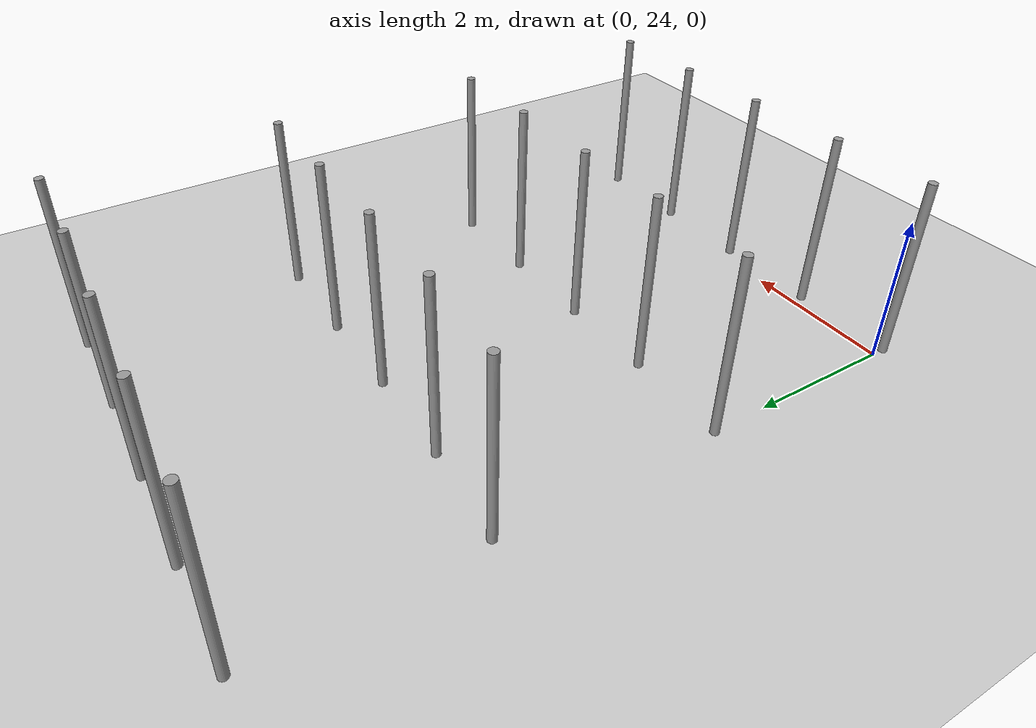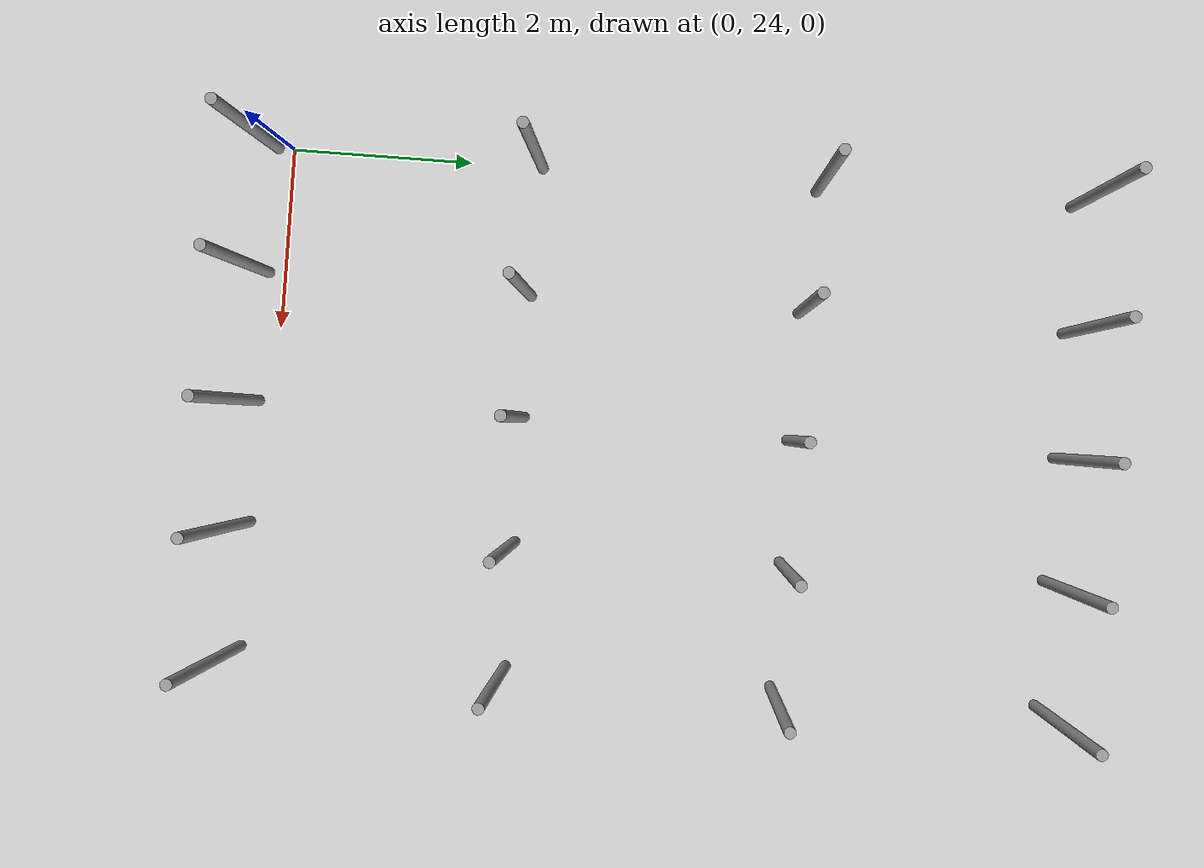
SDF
<sdf version="1.6">
 <world name="default">
  <model name="ground_plane">
   <static>1</static>
   <link name="link">
    <collision name="collision">
     <geometry><plane><normal>0 0 1</normal><size>100 100</size></plane></geometry>
     <surface><friction><ode><mu>100</mu><mu2>50</mu2></ode></friction></surface>
    </collision>
    <visual name="visual">
     <cast_shadows>0</cast_shadows>
     <geometry><plane><normal>0 0 1</normal><size>100 100</size></plane></geometry>
     <material>
      <script><uri>file://media/materials/scripts/gazebo.material</uri><name>Gazebo/Grey</name></script>
     </material>
    </visual>
   </link>
  </model>
  <model name="pole_38">
   <link name="link_0">
    <inertial>
     <mass>0.0364582</mass>
     <inertia>
      <ixx>0.00312124</ixx>
      <ixy>0</ixy>
      <ixz>0</ixz>
      <iyy>0.00312124</iyy>
      <iyz>0</iyz>
      <izz>0.00016615</izz>
     </inertia>
    </inertial>
    <visual name="visual">
     <geometry><cylinder><radius>0.06</radius><length>2.5</length></cylinder></geometry>
     <material>
      <lighting>1</lighting>
      <script><uri>file://media/materials/scripts/gazebo.material</uri><name>Gazebo/Grey</name></script>
      <ambient>0.3 0.3 0.3 1</ambient>
      <diffuse>0.7 0.7 0.7 1</diffuse>
      <specular>0.01 0.01 0.01 1</specular>
      <emissive>0 0 0 1</emissive>
      <shader type="vertex"><normal_map>__default__</normal_map></shader>
     </material>
    </visual>
    <collision name="collision">
     <geometry><cylinder><radius>0.06</radius><length>2.5</length></cylinder></geometry>
     <surface>
      <friction>
       <ode><mu>1</mu><mu2>1</mu2><fdir1>0 0 0</fdir1><slip1>0</slip1><slip2>0</slip2></ode>
       <torsional>
        <coefficient>1</coefficient>
        <patch_radius>0</patch_radius>
        <surface_radius>0</surface_radius>
        <use_patch_radius>1</use_patch_radius>
        <ode><slip>0</slip></ode>
       </torsional>
      </friction>
      <bounce><restitution_coefficient>0</restitution_coefficient><threshold>1e+06</threshold></bounce>
      <contact>
       <collide_without_contact>0</collide_without_contact>
       <collide_without_contact_bitmask>1</collide_without_contact_bitmask>
       <collide_bitmask>1</collide_bitmask>
       <ode>
        <soft_cfm>0</soft_cfm>
        <soft_erp>0.2</soft_erp>
        <kp>1e+13</kp>
        <kd>1</kd>
        <max_vel>0.01</max_vel>
        <min_depth>0</min_depth>
       </ode>
       <bullet>
        <split_impulse>1</split_impulse>
        <split_impulse_penetration_threshold>-0.01</split_impulse_penetration_threshold>
        <soft_cfm>0</soft_cfm>
        <soft_erp>0.2</soft_erp>
        <kp>1e+13</kp>
        <kd>1</kd>
       </bullet>
      </contact>
     </surface>
    </collision>
   </link>
   <static>0</static>
   <pose>0.000321 23.8224 1.25 -1e-06 1e-06 -0.024922</pose>
  </model>
  <model name="pole_39">
   <link name="link_0">
    <inertial>
     <mass>0.0364582</mass>
     <inertia>
      <ixx>0.00312124</ixx>
      <ixy>0</ixy>
      <ixz>0</ixz>
      <iyy>0.00312124</iyy>
      <iyz>0</iyz>
      <izz>0.00016615</izz>
     </inertia>
    </inertial>
    <visual name="visual">
     <geometry><cylinder><radius>0.06</radius><length>2.5</length></cylinder></geometry>
     <material>
      <lighting>1</lighting>
      <script><uri>file://media/materials/scripts/gazebo.material</uri><name>Gazebo/Grey</name></script>
      <ambient>0.3 0.3 0.3 1</ambient>
      <diffuse>0.7 0.7 0.7 1</diffuse>
      <specular>0.01 0.01 0.01 1</specular>
      <emissive>0 0 0 1</emissive>
      <shader type="vertex"><normal_map>__default__</normal_map></shader>
     </material>
    </visual>
    <collision name="collision">
     <geometry><cylinder><radius>0.06</radius><length>2.5</length></cylinder></geometry>
     <surface>
      <friction>
       <ode><mu>1</mu><mu2>1</mu2><fdir1>0 0 0</fdir1><slip1>0</slip1><slip2>0</slip2></ode>
       <torsional>
        <coefficient>1</coefficient>
        <patch_radius>0</patch_radius>
        <surface_radius>0</surface_radius>
        <use_patch_radius>1</use_patch_radius>
        <ode><slip>0</slip></ode>
       </torsional>
      </friction>
      <bounce><restitution_coefficient>0</restitution_coefficient><threshold>1e+06</threshold></bounce>
      <contact>
       <collide_without_contact>0</collide_without_contact>
       <collide_without_contact_bitmask>1</collide_without_contact_bitmask>
       <collide_bitmask>1</collide_bitmask>
       <ode>
        <soft_cfm>0</soft_cfm>
        <soft_erp>0.2</soft_erp>
        <kp>1e+13</kp>
        <kd>1</kd>
        <max_vel>0.01</max_vel>
        <min_depth>0</min_depth>
       </ode>
       <bullet>
        <split_impulse>1</split_impulse>
        <split_impulse_penetration_threshold>-0.01</split_impulse_penetration_threshold>
        <soft_cfm>0</soft_cfm>
        <soft_erp>0.2</soft_erp>
        <kp>1e+13</kp>
        <kd>1</kd>
       </bullet>
      </contact>
     </surface>
    </collision>
   </link>
   <static>0</static>
   <pose>1.39637 23.8232 1.24999 -1e-06 -0 -0.025509</pose>
  </model>
  <model name="pole_40">
   <link name="link_0">
    <inertial>
     <mass>0.0364582</mass>
     <inertia>
      <ixx>0.00312124</ixx>
      <ixy>0</ixy>
      <ixz>0</ixz>
      <iyy>0.00312124</iyy>
      <iyz>0</iyz>
      <izz>0.00016615</izz>
     </inertia>
    </inertial>
    <visual name="visual">
     <geometry><cylinder><radius>0.06</radius><length>2.5</length></cylinder></geometry>
     <material>
      <lighting>1</lighting>
      <script><uri>file://media/materials/scripts/gazebo.material</uri><name>Gazebo/Grey</name></script>
      <ambient>0.3 0.3 0.3 1</ambient>
      <diffuse>0.7 0.7 0.7 1</diffuse>
      <specular>0.01 0.01 0.01 1</specular>
      <emissive>0 0 0 1</emissive>
      <shader type="vertex"><normal_map>__default__</normal_map></shader>
     </material>
    </visual>
    <collision name="collision">
     <geometry><cylinder><radius>0.06</radius><length>2.5</length></cylinder></geometry>
     <surface>
      <friction>
       <ode><mu>1</mu><mu2>1</mu2><fdir1>0 0 0</fdir1><slip1>0</slip1><slip2>0</slip2></ode>
       <torsional>
        <coefficient>1</coefficient>
        <patch_radius>0</patch_radius>
        <surface_radius>0</surface_radius>
        <use_patch_radius>1</use_patch_radius>
        <ode><slip>0</slip></ode>
       </torsional>
      </friction>
      <bounce><restitution_coefficient>0</restitution_coefficient><threshold>1e+06</threshold></bounce>
      <contact>
       <collide_without_contact>0</collide_without_contact>
       <collide_without_contact_bitmask>1</collide_without_contact_bitmask>
       <collide_bitmask>1</collide_bitmask>
       <ode>
        <soft_cfm>0</soft_cfm>
        <soft_erp>0.2</soft_erp>
        <kp>1e+13</kp>
        <kd>1</kd>
        <max_vel>0.01</max_vel>
        <min_depth>0</min_depth>
       </ode>
       <bullet>
        <split_impulse>1</split_impulse>
        <split_impulse_penetration_threshold>-0.01</split_impulse_penetration_threshold>
        <soft_cfm>0</soft_cfm>
        <soft_erp>0.2</soft_erp>
        <kp>1e+13</kp>
        <kd>1</kd>
       </bullet>
      </contact>
     </surface>
    </collision>
   </link>
   <static>0</static>
   <pose>2.83825 23.8191 1.25 0 1e-06 0.770866</pose>
  </model>
  <model name="pole_41">
   <link name="link_0">
    <inertial>
     <mass>0.0364582</mass>
     <inertia>
      <ixx>0.00312124</ixx>
      <ixy>0</ixy>
      <ixz>0</ixz>
      <iyy>0.00312124</iyy>
      <iyz>0</iyz>
      <izz>0.00016615</izz>
     </inertia>
    </inertial>
    <visual name="visual">
     <geometry><cylinder><radius>0.06</radius><length>2.5</length></cylinder></geometry>
     <material>
      <lighting>1</lighting>
      <script><uri>file://media/materials/scripts/gazebo.material</uri><name>Gazebo/Grey</name></script>
      <ambient>0.3 0.3 0.3 1</ambient>
      <diffuse>0.7 0.7 0.7 1</diffuse>
      <specular>0.01 0.01 0.01 1</specular>
      <emissive>0 0 0 1</emissive>
      <shader type="vertex"><normal_map>__default__</normal_map></shader>
     </material>
    </visual>
    <collision name="collision">
     <geometry><cylinder><radius>0.06</radius><length>2.5</length></cylinder></geometry>
     <surface>
      <friction>
       <ode><mu>1</mu><mu2>1</mu2><fdir1>0 0 0</fdir1><slip1>0</slip1><slip2>0</slip2></ode>
       <torsional>
        <coefficient>1</coefficient>
        <patch_radius>0</patch_radius>
        <surface_radius>0</surface_radius>
        <use_patch_radius>1</use_patch_radius>
        <ode><slip>0</slip></ode>
       </torsional>
      </friction>
      <bounce><restitution_coefficient>0</restitution_coefficient><threshold>1e+06</threshold></bounce>
      <contact>
       <collide_without_contact>0</collide_without_contact>
       <collide_without_contact_bitmask>1</collide_without_contact_bitmask>
       <collide_bitmask>1</collide_bitmask>
       <ode>
        <soft_cfm>0</soft_cfm>
        <soft_erp>0.2</soft_erp>
        <kp>1e+13</kp>
        <kd>1</kd>
        <max_vel>0.01</max_vel>
        <min_depth>0</min_depth>
       </ode>
       <bullet>
        <split_impulse>1</split_impulse>
        <split_impulse_penetration_threshold>-0.01</split_impulse_penetration_threshold>
        <soft_cfm>0</soft_cfm>
        <soft_erp>0.2</soft_erp>
        <kp>1e+13</kp>
        <kd>1</kd>
       </bullet>
      </contact>
     </surface>
    </collision>
   </link>
   <static>0</static>
   <pose>4.2003 23.8222 1.25 1e-06 -4e-06 -0.026213</pose>
  </model>
  <model name="pole_42">
   <link name="link_0">
    <inertial>
     <mass>0.0364582</mass>
     <inertia>
      <ixx>0.00312124</ixx>
      <ixy>0</ixy>
      <ixz>0</ixz>
      <iyy>0.00312124</iyy>
      <iyz>0</iyz>
      <izz>0.00016615</izz>
     </inertia>
    </inertial>
    <visual name="visual">
     <geometry><cylinder><radius>0.06</radius><length>2.5</length></cylinder></geometry>
     <material>
      <lighting>1</lighting>
      <script><uri>file://media/materials/scripts/gazebo.material</uri><name>Gazebo/Grey</name></script>
      <ambient>0.3 0.3 0.3 1</ambient>
      <diffuse>0.7 0.7 0.7 1</diffuse>
      <specular>0.01 0.01 0.01 1</specular>
      <emissive>0 0 0 1</emissive>
      <shader type="vertex"><normal_map>__default__</normal_map></shader>
     </material>
    </visual>
    <collision name="collision">
     <geometry><cylinder><radius>0.06</radius><length>2.5</length></cylinder></geometry>
     <surface>
      <friction>
       <ode><mu>1</mu><mu2>1</mu2><fdir1>0 0 0</fdir1><slip1>0</slip1><slip2>0</slip2></ode>
       <torsional>
        <coefficient>1</coefficient>
        <patch_radius>0</patch_radius>
        <surface_radius>0</surface_radius>
        <use_patch_radius>1</use_patch_radius>
        <ode><slip>0</slip></ode>
       </torsional>
      </friction>
      <bounce><restitution_coefficient>0</restitution_coefficient><threshold>1e+06</threshold></bounce>
      <contact>
       <collide_without_contact>0</collide_without_contact>
       <collide_without_contact_bitmask>1</collide_without_contact_bitmask>
       <collide_bitmask>1</collide_bitmask>
       <ode>
        <soft_cfm>0</soft_cfm>
        <soft_erp>0.2</soft_erp>
        <kp>1e+13</kp>
        <kd>1</kd>
        <max_vel>0.01</max_vel>
        <min_depth>0</min_depth>
       </ode>
       <bullet>
        <split_impulse>1</split_impulse>
        <split_impulse_penetration_threshold>-0.01</split_impulse_penetration_threshold>
        <soft_cfm>0</soft_cfm>
        <soft_erp>0.2</soft_erp>
        <kp>1e+13</kp>
        <kd>1</kd>
       </bullet>
      </contact>
     </surface>
    </collision>
   </link>
   <static>0</static>
   <pose>5.60026 23.8216 1.24999 0 -1e-06 -0.02345</pose>
  </model>
  <model name="pole_43">
   <link name="link_0">
    <inertial>
     <mass>0.0364582</mass>
     <inertia>
      <ixx>0.00312124</ixx>
      <ixy>0</ixy>
      <ixz>0</ixz>
      <iyy>0.00312124</iyy>
      <iyz>0</iyz>
      <izz>0.00016615</izz>
     </inertia>
    </inertial>
    <visual name="visual">
     <geometry><cylinder><radius>0.06</radius><length>2.5</length></cylinder></geometry>
     <material>
      <lighting>1</lighting>
      <script><uri>file://media/materials/scripts/gazebo.material</uri><name>Gazebo/Grey</name></script>
      <ambient>0.3 0.3 0.3 1</ambient>
      <diffuse>0.7 0.7 0.7 1</diffuse>
      <specular>0.01 0.01 0.01 1</specular>
      <emissive>0 0 0 1</emissive>
      <shader type="vertex"><normal_map>__default__</normal_map></shader>
     </material>
    </visual>
    <collision name="collision">
     <geometry><cylinder><radius>0.06</radius><length>2.5</length></cylinder></geometry>
     <surface>
      <friction>
       <ode><mu>1</mu><mu2>1</mu2><fdir1>0 0 0</fdir1><slip1>0</slip1><slip2>0</slip2></ode>
       <torsional>
        <coefficient>1</coefficient>
        <patch_radius>0</patch_radius>
        <surface_radius>0</surface_radius>
        <use_patch_radius>1</use_patch_radius>
        <ode><slip>0</slip></ode>
       </torsional>
      </friction>
      <bounce><restitution_coefficient>0</restitution_coefficient><threshold>1e+06</threshold></bounce>
      <contact>
       <collide_without_contact>0</collide_without_contact>
       <collide_without_contact_bitmask>1</collide_without_contact_bitmask>
       <collide_bitmask>1</collide_bitmask>
       <ode>
        <soft_cfm>0</soft_cfm>
        <soft_erp>0.2</soft_erp>
        <kp>1e+13</kp>
        <kd>1</kd>
        <max_vel>0.01</max_vel>
        <min_depth>0</min_depth>
       </ode>
       <bullet>
        <split_impulse>1</split_impulse>
        <split_impulse_penetration_threshold>-0.01</split_impulse_penetration_threshold>
        <soft_cfm>0</soft_cfm>
        <soft_erp>0.2</soft_erp>
        <kp>1e+13</kp>
        <kd>1</kd>
       </bullet>
      </contact>
     </surface>
    </collision>
   </link>
   <static>0</static>
   <pose>0.000272 26.802 1.25 -1e-06 -1e-06 -0.022795</pose>
  </model>
  <model name="pole_44">
   <link name="link_0">
    <inertial>
     <mass>0.0364582</mass>
     <inertia>
      <ixx>0.00312124</ixx>
      <ixy>0</ixy>
      <ixz>0</ixz>
      <iyy>0.00312124</iyy>
      <iyz>0</iyz>
      <izz>0.00016615</izz>
     </inertia>
    </inertial>
    <visual name="visual">
     <geometry><cylinder><radius>0.06</radius><length>2.5</length></cylinder></geometry>
     <material>
      <lighting>1</lighting>
      <script><uri>file://media/materials/scripts/gazebo.material</uri><name>Gazebo/Grey</name></script>
      <ambient>0.3 0.3 0.3 1</ambient>
      <diffuse>0.7 0.7 0.7 1</diffuse>
      <specular>0.01 0.01 0.01 1</specular>
      <emissive>0 0 0 1</emissive>
      <shader type="vertex"><normal_map>__default__</normal_map></shader>
     </material>
    </visual>
    <collision name="collision">
     <geometry><cylinder><radius>0.06</radius><length>2.5</length></cylinder></geometry>
     <surface>
      <friction>
       <ode><mu>1</mu><mu2>1</mu2><fdir1>0 0 0</fdir1><slip1>0</slip1><slip2>0</slip2></ode>
       <torsional>
        <coefficient>1</coefficient>
        <patch_radius>0</patch_radius>
        <surface_radius>0</surface_radius>
        <use_patch_radius>1</use_patch_radius>
        <ode><slip>0</slip></ode>
       </torsional>
      </friction>
      <bounce><restitution_coefficient>0</restitution_coefficient><threshold>1e+06</threshold></bounce>
      <contact>
       <collide_without_contact>0</collide_without_contact>
       <collide_without_contact_bitmask>1</collide_without_contact_bitmask>
       <collide_bitmask>1</collide_bitmask>
       <ode>
        <soft_cfm>0</soft_cfm>
        <soft_erp>0.2</soft_erp>
        <kp>1e+13</kp>
        <kd>1</kd>
        <max_vel>0.01</max_vel>
        <min_depth>0</min_depth>
       </ode>
       <bullet>
        <split_impulse>1</split_impulse>
        <split_impulse_penetration_threshold>-0.01</split_impulse_penetration_threshold>
        <soft_cfm>0</soft_cfm>
        <soft_erp>0.2</soft_erp>
        <kp>1e+13</kp>
        <kd>1</kd>
       </bullet>
      </contact>
     </surface>
    </collision>
   </link>
   <static>0</static>
   <pose>1.43803 26.778 1.25 -1e-06 -0 0.806193</pose>
  </model>
  <model name="pole_45">
   <link name="link_0">
    <inertial>
     <mass>0.0364582</mass>
     <inertia>
      <ixx>0.00312124</ixx>
      <ixy>0</ixy>
      <ixz>0</ixz>
      <iyy>0.00312124</iyy>
      <iyz>0</iyz>
      <izz>0.00016615</izz>
     </inertia>
    </inertial>
    <visual name="visual">
     <geometry><cylinder><radius>0.06</radius><length>2.5</length></cylinder></geometry>
     <material>
      <lighting>1</lighting>
      <script><uri>file://media/materials/scripts/gazebo.material</uri><name>Gazebo/Grey</name></script>
      <ambient>0.3 0.3 0.3 1</ambient>
      <diffuse>0.7 0.7 0.7 1</diffuse>
      <specular>0.01 0.01 0.01 1</specular>
      <emissive>0 0 0 1</emissive>
      <shader type="vertex"><normal_map>__default__</normal_map></shader>
     </material>
    </visual>
    <collision name="collision">
     <geometry><cylinder><radius>0.06</radius><length>2.5</length></cylinder></geometry>
     <surface>
      <friction>
       <ode><mu>1</mu><mu2>1</mu2><fdir1>0 0 0</fdir1><slip1>0</slip1><slip2>0</slip2></ode>
       <torsional>
        <coefficient>1</coefficient>
        <patch_radius>0</patch_radius>
        <surface_radius>0</surface_radius>
        <use_patch_radius>1</use_patch_radius>
        <ode><slip>0</slip></ode>
       </torsional>
      </friction>
      <bounce><restitution_coefficient>0</restitution_coefficient><threshold>1e+06</threshold></bounce>
      <contact>
       <collide_without_contact>0</collide_without_contact>
       <collide_without_contact_bitmask>1</collide_without_contact_bitmask>
       <collide_bitmask>1</collide_bitmask>
       <ode>
        <soft_cfm>0</soft_cfm>
        <soft_erp>0.2</soft_erp>
        <kp>1e+13</kp>
        <kd>1</kd>
        <max_vel>0.01</max_vel>
        <min_depth>0</min_depth>
       </ode>
       <bullet>
        <split_impulse>1</split_impulse>
        <split_impulse_penetration_threshold>-0.01</split_impulse_penetration_threshold>
        <soft_cfm>0</soft_cfm>
        <soft_erp>0.2</soft_erp>
        <kp>1e+13</kp>
        <kd>1</kd>
       </bullet>
      </contact>
     </surface>
    </collision>
   </link>
   <static>0</static>
   <pose>2.80023 26.8019 1.24999 -1e-06 1e-06 -0.023685</pose>
  </model>
  <model name="pole_46">
   <link name="link_0">
    <inertial>
     <mass>0.0364582</mass>
     <inertia>
      <ixx>0.00312124</ixx>
      <ixy>0</ixy>
      <ixz>0</ixz>
      <iyy>0.00312124</iyy>
      <iyz>0</iyz>
      <izz>0.00016615</izz>
     </inertia>
    </inertial>
    <visual name="visual">
     <geometry><cylinder><radius>0.06</radius><length>2.5</length></cylinder></geometry>
     <material>
      <lighting>1</lighting>
      <script><uri>file://media/materials/scripts/gazebo.material</uri><name>Gazebo/Grey</name></script>
      <ambient>0.3 0.3 0.3 1</ambient>
      <diffuse>0.7 0.7 0.7 1</diffuse>
      <specular>0.01 0.01 0.01 1</specular>
      <emissive>0 0 0 1</emissive>
      <shader type="vertex"><normal_map>__default__</normal_map></shader>
     </material>
    </visual>
    <collision name="collision">
     <geometry><cylinder><radius>0.06</radius><length>2.5</length></cylinder></geometry>
     <surface>
      <friction>
       <ode><mu>1</mu><mu2>1</mu2><fdir1>0 0 0</fdir1><slip1>0</slip1><slip2>0</slip2></ode>
       <torsional>
        <coefficient>1</coefficient>
        <patch_radius>0</patch_radius>
        <surface_radius>0</surface_radius>
        <use_patch_radius>1</use_patch_radius>
        <ode><slip>0</slip></ode>
       </torsional>
      </friction>
      <bounce><restitution_coefficient>0</restitution_coefficient><threshold>1e+06</threshold></bounce>
      <contact>
       <collide_without_contact>0</collide_without_contact>
       <collide_without_contact_bitmask>1</collide_without_contact_bitmask>
       <collide_bitmask>1</collide_bitmask>
       <ode>
        <soft_cfm>0</soft_cfm>
        <soft_erp>0.2</soft_erp>
        <kp>1e+13</kp>
        <kd>1</kd>
        <max_vel>0.01</max_vel>
        <min_depth>0</min_depth>
       </ode>
       <bullet>
        <split_impulse>1</split_impulse>
        <split_impulse_penetration_threshold>-0.01</split_impulse_penetration_threshold>
        <soft_cfm>0</soft_cfm>
        <soft_erp>0.2</soft_erp>
        <kp>1e+13</kp>
        <kd>1</kd>
       </bullet>
      </contact>
     </surface>
    </collision>
   </link>
   <static>0</static>
   <pose>4.20028 26.802 1.25 -1e-06 1e-06 -0.023261</pose>
  </model>
  <model name="pole_47">
   <link name="link_0">
    <inertial>
     <mass>0.0364582</mass>
     <inertia>
      <ixx>0.00312124</ixx>
      <ixy>0</ixy>
      <ixz>0</ixz>
      <iyy>0.00312124</iyy>
      <iyz>0</iyz>
      <izz>0.00016615</izz>
     </inertia>
    </inertial>
    <visual name="visual">
     <geometry><cylinder><radius>0.06</radius><length>2.5</length></cylinder></geometry>
     <material>
      <lighting>1</lighting>
      <script><uri>file://media/materials/scripts/gazebo.material</uri><name>Gazebo/Grey</name></script>
      <ambient>0.3 0.3 0.3 1</ambient>
      <diffuse>0.7 0.7 0.7 1</diffuse>
      <specular>0.01 0.01 0.01 1</specular>
      <emissive>0 0 0 1</emissive>
      <shader type="vertex"><normal_map>__default__</normal_map></shader>
     </material>
    </visual>
    <collision name="collision">
     <geometry><cylinder><radius>0.06</radius><length>2.5</length></cylinder></geometry>
     <surface>
      <friction>
       <ode><mu>1</mu><mu2>1</mu2><fdir1>0 0 0</fdir1><slip1>0</slip1><slip2>0</slip2></ode>
       <torsional>
        <coefficient>1</coefficient>
        <patch_radius>0</patch_radius>
        <surface_radius>0</surface_radius>
        <use_patch_radius>1</use_patch_radius>
        <ode><slip>0</slip></ode>
       </torsional>
      </friction>
      <bounce><restitution_coefficient>0</restitution_coefficient><threshold>1e+06</threshold></bounce>
      <contact>
       <collide_without_contact>0</collide_without_contact>
       <collide_without_contact_bitmask>1</collide_without_contact_bitmask>
       <collide_bitmask>1</collide_bitmask>
       <ode>
        <soft_cfm>0</soft_cfm>
        <soft_erp>0.2</soft_erp>
        <kp>1e+13</kp>
        <kd>1</kd>
        <max_vel>0.01</max_vel>
        <min_depth>0</min_depth>
       </ode>
       <bullet>
        <split_impulse>1</split_impulse>
        <split_impulse_penetration_threshold>-0.01</split_impulse_penetration_threshold>
        <soft_cfm>0</soft_cfm>
        <soft_erp>0.2</soft_erp>
        <kp>1e+13</kp>
        <kd>1</kd>
       </bullet>
      </contact>
     </surface>
    </collision>
   </link>
   <static>0</static>
   <pose>5.60023 26.8018 1.25 -0 -2e-06 -0.021104</pose>
  </model>
  <model name="pole_48">
   <link name="link_0">
    <inertial>
     <mass>0.0364582</mass>
     <inertia>
      <ixx>0.00312124</ixx>
      <ixy>0</ixy>
      <ixz>0</ixz>
      <iyy>0.00312124</iyy>
      <iyz>0</iyz>
      <izz>0.00016615</izz>
     </inertia>
    </inertial>
    <visual name="visual">
     <geometry><cylinder><radius>0.06</radius><length>2.5</length></cylinder></geometry>
     <material>
      <lighting>1</lighting>
      <script><uri>file://media/materials/scripts/gazebo.material</uri><name>Gazebo/Grey</name></script>
      <ambient>0.3 0.3 0.3 1</ambient>
      <diffuse>0.7 0.7 0.7 1</diffuse>
      <specular>0.01 0.01 0.01 1</specular>
      <emissive>0 0 0 1</emissive>
      <shader type="vertex"><normal_map>__default__</normal_map></shader>
     </material>
    </visual>
    <collision name="collision">
     <geometry><cylinder><radius>0.06</radius><length>2.5</length></cylinder></geometry>
     <surface>
      <friction>
       <ode><mu>1</mu><mu2>1</mu2><fdir1>0 0 0</fdir1><slip1>0</slip1><slip2>0</slip2></ode>
       <torsional>
        <coefficient>1</coefficient>
        <patch_radius>0</patch_radius>
        <surface_radius>0</surface_radius>
        <use_patch_radius>1</use_patch_radius>
        <ode><slip>0</slip></ode>
       </torsional>
      </friction>
      <bounce><restitution_coefficient>0</restitution_coefficient><threshold>1e+06</threshold></bounce>
      <contact>
       <collide_without_contact>0</collide_without_contact>
       <collide_without_contact_bitmask>1</collide_without_contact_bitmask>
       <collide_bitmask>1</collide_bitmask>
       <ode>
        <soft_cfm>0</soft_cfm>
        <soft_erp>0.2</soft_erp>
        <kp>1e+13</kp>
        <kd>1</kd>
        <max_vel>0.01</max_vel>
        <min_depth>0</min_depth>
       </ode>
       <bullet>
        <split_impulse>1</split_impulse>
        <split_impulse_penetration_threshold>-0.01</split_impulse_penetration_threshold>
        <soft_cfm>0</soft_cfm>
        <soft_erp>0.2</soft_erp>
        <kp>1e+13</kp>
        <kd>1</kd>
       </bullet>
      </contact>
     </surface>
    </collision>
   </link>
   <static>0</static>
   <pose>0.023463 29.8796 1.24999 2e-06 0 -1.87607</pose>
  </model>
  <model name="pole_49">
   <link name="link_0">
    <inertial>
     <mass>0.0364582</mass>
     <inertia>
      <ixx>0.00312124</ixx>
      <ixy>0</ixy>
      <ixz>0</ixz>
      <iyy>0.00312124</iyy>
      <iyz>0</iyz>
      <izz>0.00016615</izz>
     </inertia>
    </inertial>
    <visual name="visual">
     <geometry><cylinder><radius>0.06</radius><length>2.5</length></cylinder></geometry>
     <material>
      <lighting>1</lighting>
      <script><uri>file://media/materials/scripts/gazebo.material</uri><name>Gazebo/Grey</name></script>
      <ambient>0.3 0.3 0.3 1</ambient>
      <diffuse>0.7 0.7 0.7 1</diffuse>
      <specular>0.01 0.01 0.01 1</specular>
      <emissive>0 0 0 1</emissive>
      <shader type="vertex"><normal_map>__default__</normal_map></shader>
     </material>
    </visual>
    <collision name="collision">
     <geometry><cylinder><radius>0.06</radius><length>2.5</length></cylinder></geometry>
     <surface>
      <friction>
       <ode><mu>1</mu><mu2>1</mu2><fdir1>0 0 0</fdir1><slip1>0</slip1><slip2>0</slip2></ode>
       <torsional>
        <coefficient>1</coefficient>
        <patch_radius>0</patch_radius>
        <surface_radius>0</surface_radius>
        <use_patch_radius>1</use_patch_radius>
        <ode><slip>0</slip></ode>
       </torsional>
      </friction>
      <bounce><restitution_coefficient>0</restitution_coefficient><threshold>1e+06</threshold></bounce>
      <contact>
       <collide_without_contact>0</collide_without_contact>
       <collide_without_contact_bitmask>1</collide_without_contact_bitmask>
       <collide_bitmask>1</collide_bitmask>
       <ode>
        <soft_cfm>0</soft_cfm>
        <soft_erp>0.2</soft_erp>
        <kp>1e+13</kp>
        <kd>1</kd>
        <max_vel>0.01</max_vel>
        <min_depth>0</min_depth>
       </ode>
       <bullet>
        <split_impulse>1</split_impulse>
        <split_impulse_penetration_threshold>-0.01</split_impulse_penetration_threshold>
        <soft_cfm>0</soft_cfm>
        <soft_erp>0.2</soft_erp>
        <kp>1e+13</kp>
        <kd>1</kd>
       </bullet>
      </contact>
     </surface>
    </collision>
   </link>
   <static>0</static>
   <pose>1.40026 29.782 1.25 -0 1e-06 -0.02208</pose>
  </model>
  <model name="pole_50">
   <link name="link_0">
    <inertial>
     <mass>0.0364582</mass>
     <inertia>
      <ixx>0.00312124</ixx>
      <ixy>0</ixy>
      <ixz>0</ixz>
      <iyy>0.00312124</iyy>
      <iyz>0</iyz>
      <izz>0.00016615</izz>
     </inertia>
    </inertial>
    <visual name="visual">
     <geometry><cylinder><radius>0.06</radius><length>2.5</length></cylinder></geometry>
     <material>
      <lighting>1</lighting>
      <script><uri>file://media/materials/scripts/gazebo.material</uri><name>Gazebo/Grey</name></script>
      <ambient>0.3 0.3 0.3 1</ambient>
      <diffuse>0.7 0.7 0.7 1</diffuse>
      <specular>0.01 0.01 0.01 1</specular>
      <emissive>0 0 0 1</emissive>
      <shader type="vertex"><normal_map>__default__</normal_map></shader>
     </material>
    </visual>
    <collision name="collision">
     <geometry><cylinder><radius>0.06</radius><length>2.5</length></cylinder></geometry>
     <surface>
      <friction>
       <ode><mu>1</mu><mu2>1</mu2><fdir1>0 0 0</fdir1><slip1>0</slip1><slip2>0</slip2></ode>
       <torsional>
        <coefficient>1</coefficient>
        <patch_radius>0</patch_radius>
        <surface_radius>0</surface_radius>
        <use_patch_radius>1</use_patch_radius>
        <ode><slip>0</slip></ode>
       </torsional>
      </friction>
      <bounce><restitution_coefficient>0</restitution_coefficient><threshold>1e+06</threshold></bounce>
      <contact>
       <collide_without_contact>0</collide_without_contact>
       <collide_without_contact_bitmask>1</collide_without_contact_bitmask>
       <collide_bitmask>1</collide_bitmask>
       <ode>
        <soft_cfm>0</soft_cfm>
        <soft_erp>0.2</soft_erp>
        <kp>1e+13</kp>
        <kd>1</kd>
        <max_vel>0.01</max_vel>
        <min_depth>0</min_depth>
       </ode>
       <bullet>
        <split_impulse>1</split_impulse>
        <split_impulse_penetration_threshold>-0.01</split_impulse_penetration_threshold>
        <soft_cfm>0</soft_cfm>
        <soft_erp>0.2</soft_erp>
        <kp>1e+13</kp>
        <kd>1</kd>
       </bullet>
      </contact>
     </surface>
    </collision>
   </link>
   <static>0</static>
   <pose>2.82989 29.7635 1.24999 0 1e-06 0.604565</pose>
  </model>
  <model name="pole_51">
   <link name="link_0">
    <inertial>
     <mass>0.0364582</mass>
     <inertia>
      <ixx>0.00312124</ixx>
      <ixy>0</ixy>
      <ixz>0</ixz>
      <iyy>0.00312124</iyy>
      <iyz>0</iyz>
      <izz>0.00016615</izz>
     </inertia>
    </inertial>
    <visual name="visual">
     <geometry><cylinder><radius>0.06</radius><length>2.5</length></cylinder></geometry>
     <material>
      <lighting>1</lighting>
      <script><uri>file://media/materials/scripts/gazebo.material</uri><name>Gazebo/Grey</name></script>
      <ambient>0.3 0.3 0.3 1</ambient>
      <diffuse>0.7 0.7 0.7 1</diffuse>
      <specular>0.01 0.01 0.01 1</specular>
      <emissive>0 0 0 1</emissive>
      <shader type="vertex"><normal_map>__default__</normal_map></shader>
     </material>
    </visual>
    <collision name="collision">
     <geometry><cylinder><radius>0.06</radius><length>2.5</length></cylinder></geometry>
     <surface>
      <friction>
       <ode><mu>1</mu><mu2>1</mu2><fdir1>0 0 0</fdir1><slip1>0</slip1><slip2>0</slip2></ode>
       <torsional>
        <coefficient>1</coefficient>
        <patch_radius>0</patch_radius>
        <surface_radius>0</surface_radius>
        <use_patch_radius>1</use_patch_radius>
        <ode><slip>0</slip></ode>
       </torsional>
      </friction>
      <bounce><restitution_coefficient>0</restitution_coefficient><threshold>1e+06</threshold></bounce>
      <contact>
       <collide_without_contact>0</collide_without_contact>
       <collide_without_contact_bitmask>1</collide_without_contact_bitmask>
       <collide_bitmask>1</collide_bitmask>
       <ode>
        <soft_cfm>0</soft_cfm>
        <soft_erp>0.2</soft_erp>
        <kp>1e+13</kp>
        <kd>1</kd>
        <max_vel>0.01</max_vel>
        <min_depth>0</min_depth>
       </ode>
       <bullet>
        <split_impulse>1</split_impulse>
        <split_impulse_penetration_threshold>-0.01</split_impulse_penetration_threshold>
        <soft_cfm>0</soft_cfm>
        <soft_erp>0.2</soft_erp>
        <kp>1e+13</kp>
        <kd>1</kd>
       </bullet>
      </contact>
     </surface>
    </collision>
   </link>
   <static>0</static>
   <pose>4.20026 29.7818 1.25 -0 4e-06 -0.01887</pose>
  </model>
  <model name="pole_52">
   <link name="link_0">
    <inertial>
     <mass>0.0364582</mass>
     <inertia>
      <ixx>0.00312124</ixx>
      <ixy>0</ixy>
      <ixz>0</ixz>
      <iyy>0.00312124</iyy>
      <iyz>0</iyz>
      <izz>0.00016615</izz>
     </inertia>
    </inertial>
    <visual name="visual">
     <geometry><cylinder><radius>0.06</radius><length>2.5</length></cylinder></geometry>
     <material>
      <lighting>1</lighting>
      <script><uri>file://media/materials/scripts/gazebo.material</uri><name>Gazebo/Grey</name></script>
      <ambient>0.3 0.3 0.3 1</ambient>
      <diffuse>0.7 0.7 0.7 1</diffuse>
      <specular>0.01 0.01 0.01 1</specular>
      <emissive>0 0 0 1</emissive>
      <shader type="vertex"><normal_map>__default__</normal_map></shader>
     </material>
    </visual>
    <collision name="collision">
     <geometry><cylinder><radius>0.06</radius><length>2.5</length></cylinder></geometry>
     <surface>
      <friction>
       <ode><mu>1</mu><mu2>1</mu2><fdir1>0 0 0</fdir1><slip1>0</slip1><slip2>0</slip2></ode>
       <torsional>
        <coefficient>1</coefficient>
        <patch_radius>0</patch_radius>
        <surface_radius>0</surface_radius>
        <use_patch_radius>1</use_patch_radius>
        <ode><slip>0</slip></ode>
       </torsional>
      </friction>
      <bounce><restitution_coefficient>0</restitution_coefficient><threshold>1e+06</threshold></bounce>
      <contact>
       <collide_without_contact>0</collide_without_contact>
       <collide_without_contact_bitmask>1</collide_without_contact_bitmask>
       <collide_bitmask>1</collide_bitmask>
       <ode>
        <soft_cfm>0</soft_cfm>
        <soft_erp>0.2</soft_erp>
        <kp>1e+13</kp>
        <kd>1</kd>
        <max_vel>0.01</max_vel>
        <min_depth>0</min_depth>
       </ode>
       <bullet>
        <split_impulse>1</split_impulse>
        <split_impulse_penetration_threshold>-0.01</split_impulse_penetration_threshold>
        <soft_cfm>0</soft_cfm>
        <soft_erp>0.2</soft_erp>
        <kp>1e+13</kp>
        <kd>1</kd>
       </bullet>
      </contact>
     </surface>
    </collision>
   </link>
   <static>0</static>
   <pose>5.6002 29.7816 1.24999 -2e-06 -3e-06 -0.015745</pose>
  </model>
  <model name="pole_53">
   <link name="link_0">
    <inertial>
     <mass>0.0364582</mass>
     <inertia>
      <ixx>0.00312124</ixx>
      <ixy>0</ixy>
      <ixz>0</ixz>
      <iyy>0.00312124</iyy>
      <iyz>0</iyz>
      <izz>0.00016615</izz>
     </inertia>
    </inertial>
    <visual name="visual">
     <geometry><cylinder><radius>0.06</radius><length>2.5</length></cylinder></geometry>
     <material>
      <lighting>1</lighting>
      <script><uri>file://media/materials/scripts/gazebo.material</uri><name>Gazebo/Grey</name></script>
      <ambient>0.3 0.3 0.3 1</ambient>
      <diffuse>0.7 0.7 0.7 1</diffuse>
      <specular>0.01 0.01 0.01 1</specular>
      <emissive>0 0 0 1</emissive>
      <shader type="vertex"><normal_map>__default__</normal_map></shader>
     </material>
    </visual>
    <collision name="collision">
     <geometry><cylinder><radius>0.06</radius><length>2.5</length></cylinder></geometry>
     <surface>
      <friction>
       <ode><mu>1</mu><mu2>1</mu2><fdir1>0 0 0</fdir1><slip1>0</slip1><slip2>0</slip2></ode>
       <torsional>
        <coefficient>1</coefficient>
        <patch_radius>0</patch_radius>
        <surface_radius>0</surface_radius>
        <use_patch_radius>1</use_patch_radius>
        <ode><slip>0</slip></ode>
       </torsional>
      </friction>
      <bounce><restitution_coefficient>0</restitution_coefficient><threshold>1e+06</threshold></bounce>
      <contact>
       <collide_without_contact>0</collide_without_contact>
       <collide_without_contact_bitmask>1</collide_without_contact_bitmask>
       <collide_bitmask>1</collide_bitmask>
       <ode>
        <soft_cfm>0</soft_cfm>
        <soft_erp>0.2</soft_erp>
        <kp>1e+13</kp>
        <kd>1</kd>
        <max_vel>0.01</max_vel>
        <min_depth>0</min_depth>
       </ode>
       <bullet>
        <split_impulse>1</split_impulse>
        <split_impulse_penetration_threshold>-0.01</split_impulse_penetration_threshold>
        <soft_cfm>0</soft_cfm>
        <soft_erp>0.2</soft_erp>
        <kp>1e+13</kp>
        <kd>1</kd>
       </bullet>
      </contact>
     </surface>
    </collision>
   </link>
   <static>0</static>
   <pose>-0.022553 32.7479 1.24999 -1e-06 -0 -0.448381</pose>
  </model>
  <model name="pole_54">
   <link name="link_0">
    <inertial>
     <mass>0.0364582</mass>
     <inertia>
      <ixx>0.00312124</ixx>
      <ixy>0</ixy>
      <ixz>0</ixz>
      <iyy>0.00312124</iyy>
      <iyz>0</iyz>
      <izz>0.00016615</izz>
     </inertia>
    </inertial>
    <visual name="visual">
     <geometry><cylinder><radius>0.06</radius><length>2.5</length></cylinder></geometry>
     <material>
      <lighting>1</lighting>
      <script><uri>file://media/materials/scripts/gazebo.material</uri><name>Gazebo/Grey</name></script>
      <ambient>0.3 0.3 0.3 1</ambient>
      <diffuse>0.7 0.7 0.7 1</diffuse>
      <specular>0.01 0.01 0.01 1</specular>
      <emissive>0 0 0 1</emissive>
      <shader type="vertex"><normal_map>__default__</normal_map></shader>
     </material>
    </visual>
    <collision name="collision">
     <geometry><cylinder><radius>0.06</radius><length>2.5</length></cylinder></geometry>
     <surface>
      <friction>
       <ode><mu>1</mu><mu2>1</mu2><fdir1>0 0 0</fdir1><slip1>0</slip1><slip2>0</slip2></ode>
       <torsional>
        <coefficient>1</coefficient>
        <patch_radius>0</patch_radius>
        <surface_radius>0</surface_radius>
        <use_patch_radius>1</use_patch_radius>
        <ode><slip>0</slip></ode>
       </torsional>
      </friction>
      <bounce><restitution_coefficient>0</restitution_coefficient><threshold>1e+06</threshold></bounce>
      <contact>
       <collide_without_contact>0</collide_without_contact>
       <collide_without_contact_bitmask>1</collide_without_contact_bitmask>
       <collide_bitmask>1</collide_bitmask>
       <ode>
        <soft_cfm>0</soft_cfm>
        <soft_erp>0.2</soft_erp>
        <kp>1e+13</kp>
        <kd>1</kd>
        <max_vel>0.01</max_vel>
        <min_depth>0</min_depth>
       </ode>
       <bullet>
        <split_impulse>1</split_impulse>
        <split_impulse_penetration_threshold>-0.01</split_impulse_penetration_threshold>
        <soft_cfm>0</soft_cfm>
        <soft_erp>0.2</soft_erp>
        <kp>1e+13</kp>
        <kd>1</kd>
       </bullet>
      </contact>
     </surface>
    </collision>
   </link>
   <static>0</static>
   <pose>1.40017 32.7612 1.24999 0 -1e-06 -0.013071</pose>
  </model>
  <model name="pole_55">
   <link name="link_0">
    <inertial>
     <mass>0.0364582</mass>
     <inertia>
      <ixx>0.00312124</ixx>
      <ixy>0</ixy>
      <ixz>0</ixz>
      <iyy>0.00312124</iyy>
      <iyz>0</iyz>
      <izz>0.00016615</izz>
     </inertia>
    </inertial>
    <visual name="visual">
     <geometry><cylinder><radius>0.06</radius><length>2.5</length></cylinder></geometry>
     <material>
      <lighting>1</lighting>
      <script><uri>file://media/materials/scripts/gazebo.material</uri><name>Gazebo/Grey</name></script>
      <ambient>0.3 0.3 0.3 1</ambient>
      <diffuse>0.7 0.7 0.7 1</diffuse>
      <specular>0.01 0.01 0.01 1</specular>
      <emissive>0 0 0 1</emissive>
      <shader type="vertex"><normal_map>__default__</normal_map></shader>
     </material>
    </visual>
    <collision name="collision">
     <geometry><cylinder><radius>0.06</radius><length>2.5</length></cylinder></geometry>
     <surface>
      <friction>
       <ode><mu>1</mu><mu2>1</mu2><fdir1>0 0 0</fdir1><slip1>0</slip1><slip2>0</slip2></ode>
       <torsional>
        <coefficient>1</coefficient>
        <patch_radius>0</patch_radius>
        <surface_radius>0</surface_radius>
        <use_patch_radius>1</use_patch_radius>
        <ode><slip>0</slip></ode>
       </torsional>
      </friction>
      <bounce><restitution_coefficient>0</restitution_coefficient><threshold>1e+06</threshold></bounce>
      <contact>
       <collide_without_contact>0</collide_without_contact>
       <collide_without_contact_bitmask>1</collide_without_contact_bitmask>
       <collide_bitmask>1</collide_bitmask>
       <ode>
        <soft_cfm>0</soft_cfm>
        <soft_erp>0.2</soft_erp>
        <kp>1e+13</kp>
        <kd>1</kd>
        <max_vel>0.01</max_vel>
        <min_depth>0</min_depth>
       </ode>
       <bullet>
        <split_impulse>1</split_impulse>
        <split_impulse_penetration_threshold>-0.01</split_impulse_penetration_threshold>
        <soft_cfm>0</soft_cfm>
        <soft_erp>0.2</soft_erp>
        <kp>1e+13</kp>
        <kd>1</kd>
       </bullet>
      </contact>
     </surface>
    </collision>
   </link>
   <static>0</static>
   <pose>2.80022 32.7616 1.25 -1e-06 -1e-06 -0.019918</pose>
  </model>
  <model name="pole_56">
   <link name="link_0">
    <inertial>
     <mass>0.0364582</mass>
     <inertia>
      <ixx>0.00312124</ixx>
      <ixy>0</ixy>
      <ixz>0</ixz>
      <iyy>0.00312124</iyy>
      <iyz>0</iyz>
      <izz>0.00016615</izz>
     </inertia>
    </inertial>
    <visual name="visual">
     <geometry><cylinder><radius>0.06</radius><length>2.5</length></cylinder></geometry>
     <material>
      <lighting>1</lighting>
      <script><uri>file://media/materials/scripts/gazebo.material</uri><name>Gazebo/Grey</name></script>
      <ambient>0.3 0.3 0.3 1</ambient>
      <diffuse>0.7 0.7 0.7 1</diffuse>
      <specular>0.01 0.01 0.01 1</specular>
      <emissive>0 0 0 1</emissive>
      <shader type="vertex"><normal_map>__default__</normal_map></shader>
     </material>
    </visual>
    <collision name="collision">
     <geometry><cylinder><radius>0.06</radius><length>2.5</length></cylinder></geometry>
     <surface>
      <friction>
       <ode><mu>1</mu><mu2>1</mu2><fdir1>0 0 0</fdir1><slip1>0</slip1><slip2>0</slip2></ode>
       <torsional>
        <coefficient>1</coefficient>
        <patch_radius>0</patch_radius>
        <surface_radius>0</surface_radius>
        <use_patch_radius>1</use_patch_radius>
        <ode><slip>0</slip></ode>
       </torsional>
      </friction>
      <bounce><restitution_coefficient>0</restitution_coefficient><threshold>1e+06</threshold></bounce>
      <contact>
       <collide_without_contact>0</collide_without_contact>
       <collide_without_contact_bitmask>1</collide_without_contact_bitmask>
       <collide_bitmask>1</collide_bitmask>
       <ode>
        <soft_cfm>0</soft_cfm>
        <soft_erp>0.2</soft_erp>
        <kp>1e+13</kp>
        <kd>1</kd>
        <max_vel>0.01</max_vel>
        <min_depth>0</min_depth>
       </ode>
       <bullet>
        <split_impulse>1</split_impulse>
        <split_impulse_penetration_threshold>-0.01</split_impulse_penetration_threshold>
        <soft_cfm>0</soft_cfm>
        <soft_erp>0.2</soft_erp>
        <kp>1e+13</kp>
        <kd>1</kd>
       </bullet>
      </contact>
     </surface>
    </collision>
   </link>
   <static>0</static>
   <pose>4.18046 32.75 1.25 -1e-06 -1e-06 -0.358749</pose>
  </model>
  <model name="pole_57">
   <link name="link_0">
    <inertial>
     <mass>0.0364582</mass>
     <inertia>
      <ixx>0.00312124</ixx>
      <ixy>0</ixy>
      <ixz>0</ixz>
      <iyy>0.00312124</iyy>
      <iyz>0</iyz>
      <izz>0.00016615</izz>
     </inertia>
    </inertial>
    <visual name="visual">
     <geometry><cylinder><radius>0.06</radius><length>2.5</length></cylinder></geometry>
     <material>
      <lighting>1</lighting>
      <script><uri>file://media/materials/scripts/gazebo.material</uri><name>Gazebo/Grey</name></script>
      <ambient>0.3 0.3 0.3 1</ambient>
      <diffuse>0.7 0.7 0.7 1</diffuse>
      <specular>0.01 0.01 0.01 1</specular>
      <emissive>0 0 0 1</emissive>
      <shader type="vertex"><normal_map>__default__</normal_map></shader>
     </material>
    </visual>
    <collision name="collision">
     <geometry><cylinder><radius>0.06</radius><length>2.5</length></cylinder></geometry>
     <surface>
      <friction>
       <ode><mu>1</mu><mu2>1</mu2><fdir1>0 0 0</fdir1><slip1>0</slip1><slip2>0</slip2></ode>
       <torsional>
        <coefficient>1</coefficient>
        <patch_radius>0</patch_radius>
        <surface_radius>0</surface_radius>
        <use_patch_radius>1</use_patch_radius>
        <ode><slip>0</slip></ode>
       </torsional>
      </friction>
      <bounce><restitution_coefficient>0</restitution_coefficient><threshold>1e+06</threshold></bounce>
      <contact>
       <collide_without_contact>0</collide_without_contact>
       <collide_without_contact_bitmask>1</collide_without_contact_bitmask>
       <collide_bitmask>1</collide_bitmask>
       <ode>
        <soft_cfm>0</soft_cfm>
        <soft_erp>0.2</soft_erp>
        <kp>1e+13</kp>
        <kd>1</kd>
        <max_vel>0.01</max_vel>
        <min_depth>0</min_depth>
       </ode>
       <bullet>
        <split_impulse>1</split_impulse>
        <split_impulse_penetration_threshold>-0.01</split_impulse_penetration_threshold>
        <soft_cfm>0</soft_cfm>
        <soft_erp>0.2</soft_erp>
        <kp>1e+13</kp>
        <kd>1</kd>
       </bullet>
      </contact>
     </surface>
    </collision>
   </link>
   <static>0</static>
   <pose>5.58435 32.7612 1.24999 0 -1e-06 -0.015883</pose>
  </model>
 </world>
</sdf>
